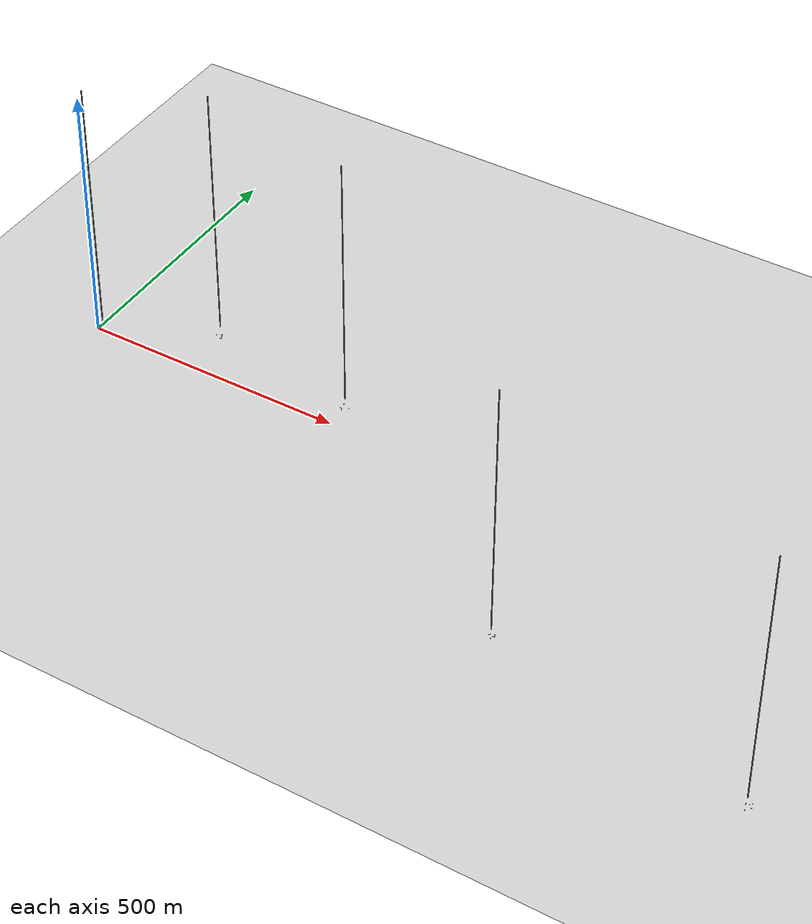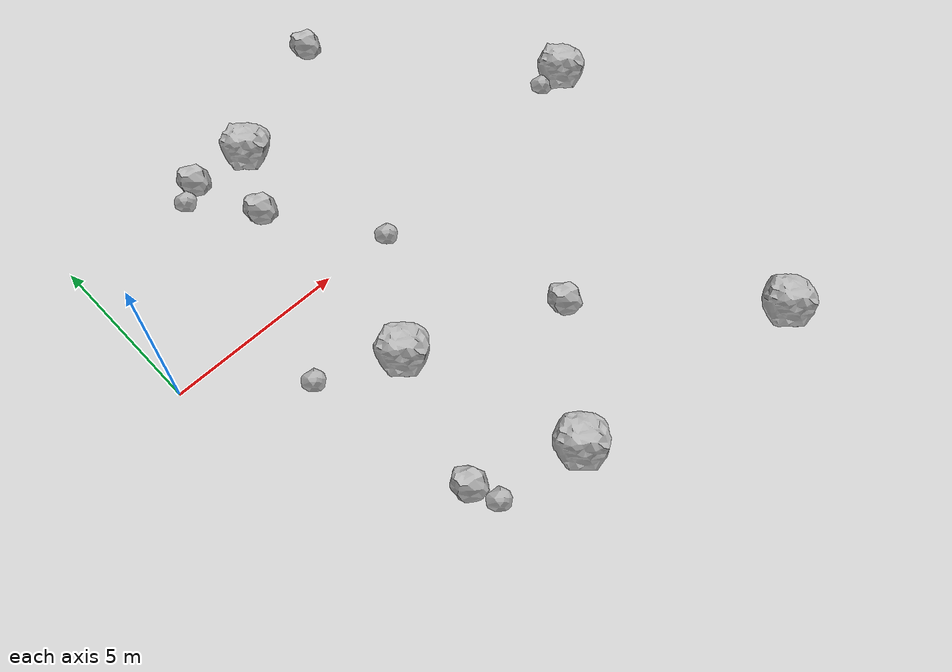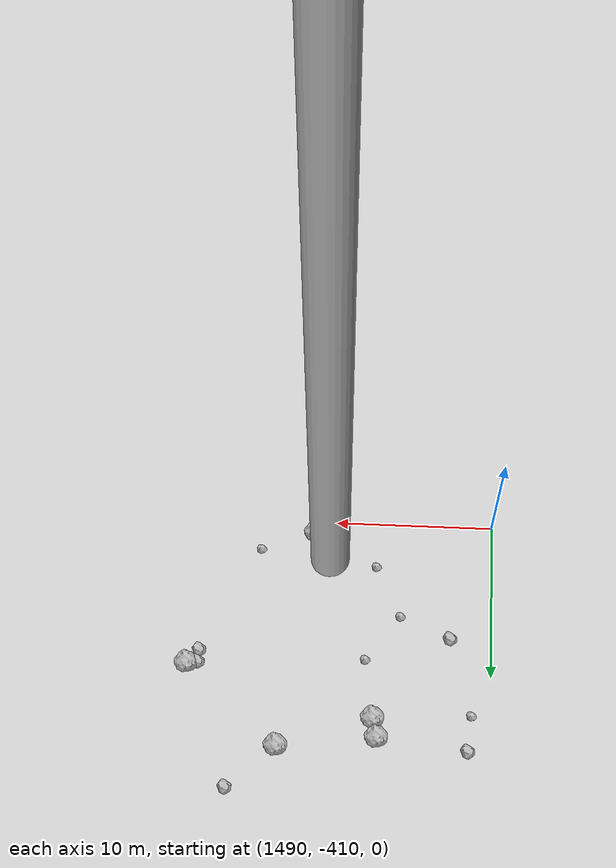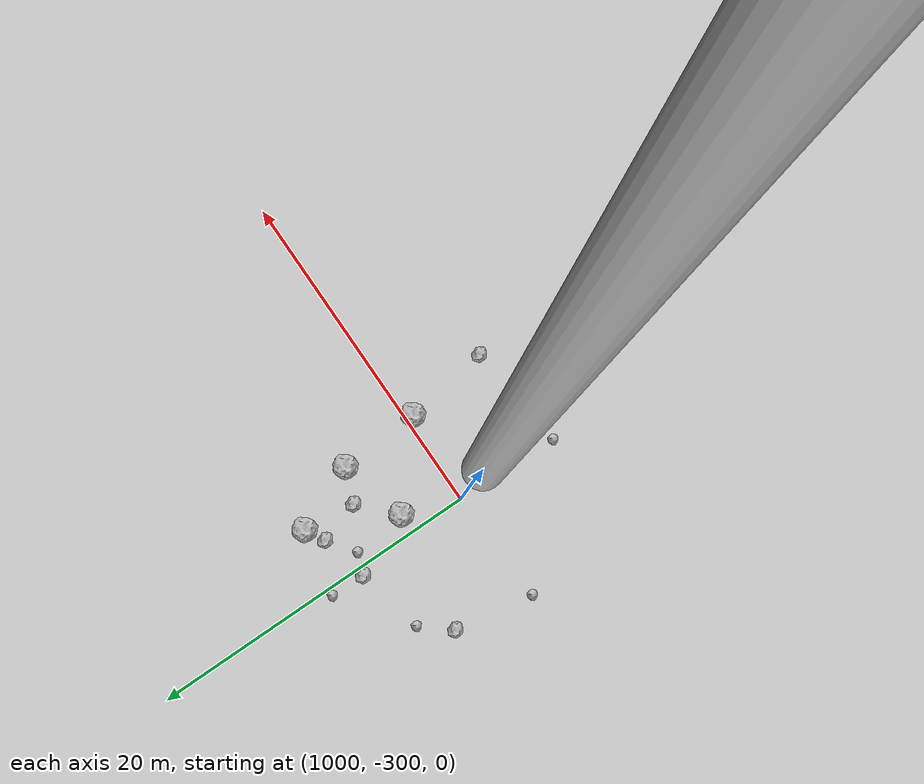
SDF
<?xml version="1.0" ?>
<sdf version="1.6">
  <world name="default">

    <include>
      <uri>model://custom_ground</uri>
    </include>

    <include>
      <uri>model://sun</uri>
    </include>

    <spherical_coordinates>
      <surface_model>EARTH_WGS84</surface_model>
      <latitude_deg>38.161479</latitude_deg>
      <longitude_deg>-122.454630</longitude_deg>
      <elevation>488.0</elevation>
      <heading_deg>90</heading_deg>
    </spherical_coordinates>

    <model name="rock1_0_0">
      <include>
        <uri>model://rock1</uri>
        <pose>15.049386007009108 0.6301330291185518 0.5 0 0 0</pose>
      </include>
    </model>
    <model name="rock1_0_1">
      <include>
        <uri>model://rock1</uri>
        <pose>6.252240621405232 -8.107494832419547 0.5 0 0 0</pose>
      </include>
    </model>
    <model name="rock1_0_2">
      <include>
        <uri>model://rock1</uri>
        <pose>6.13131145625172 4.898018880516021 0.5 0 0 0</pose>
      </include>
    </model>
    <model name="rock1_0_3">
      <include>
        <uri>model://rock1</uri>
        <pose>4.850833298447603 -3.2062866099931453 0.5 0 0 0</pose>
      </include>
    </model>
    <model name="rock1_0_4">
      <include>
        <uri>model://rock1</uri>
        <pose>13.146888730386816 -9.274559202458192 0.5 0 0 0</pose>
      </include>
    </model>
    <model name="rock2_0_0">
      <include>
        <uri>model://rock2</uri>
        <pose>5.053125258290841 3.0263943467481464 0.3 0 0 0</pose>
      </include>
    </model>
    <model name="rock2_0_1">
      <include>
        <uri>model://rock2</uri>
        <pose>10.058355284001163 7.05131651492384 0.3 0 0 0</pose>
      </include>
    </model>
    <model name="rock2_0_2">
      <include>
        <uri>model://rock2</uri>
        <pose>4.307949738254033 5.146027517969925 0.3 0 0 0</pose>
      </include>
    </model>
    <model name="rock2_0_3">
      <include>
        <uri>model://rock2</uri>
        <pose>9.01484330839224 -4.997014113383091 0.3 0 0 0</pose>
      </include>
    </model>
    <model name="rock2_0_4">
      <include>
        <uri>model://rock2</uri>
        <pose>3.544194802115388 -6.901821173078497 0.3 0 0 0</pose>
      </include>
    </model>
    <model name="rock3_0_0">
      <include>
        <uri>model://rock3</uri>
        <pose>3.692150799798075 4.700861158542702 0.2 0 0 0</pose>
      </include>
    </model>
    <model name="rock3_0_1">
      <include>
        <uri>model://rock3</uri>
        <pose>14.209269292268571 0.6861085558435409 0.2 0 0 0</pose>
      </include>
    </model>
    <model name="rock3_0_2">
      <include>
        <uri>model://rock3</uri>
        <pose>2.6527298456291715 -2.1764521321983343 0.2 0 0 0</pose>
      </include>
    </model>
    <model name="rock3_0_3">
      <include>
        <uri>model://rock3</uri>
        <pose>3.784452737846311 -7.686834529624152 0.2 0 0 0</pose>
      </include>
    </model>
    <model name="rock3_0_4">
      <include>
        <uri>model://rock3</uri>
        <pose>7.033622980079127 -0.1064135736379761 0.2 0 0 0</pose>
      </include>
    </model>
    <model name="rock1_1_0">
      <include>
        <uri>model://rock1</uri>
        <pose>192.42710236050746 96.53637959637186 0.5 0 0 0</pose>
      </include>
    </model>
    <model name="rock1_1_1">
      <include>
        <uri>model://rock1</uri>
        <pose>203.54833982389934 97.2449010823345 0.5 0 0 0</pose>
      </include>
    </model>
    <model name="rock1_1_2">
      <include>
        <uri>model://rock1</uri>
        <pose>204.71263157994605 96.43378466469366 0.5 0 0 0</pose>
      </include>
    </model>
    <model name="rock1_1_3">
      <include>
        <uri>model://rock1</uri>
        <pose>202.04696728433305 101.47773368306039 0.5 0 0 0</pose>
      </include>
    </model>
    <model name="rock1_1_4">
      <include>
        <uri>model://rock1</uri>
        <pose>204.69179203726998 92.35005801737452 0.5 0 0 0</pose>
      </include>
    </model>
    <model name="rock2_1_0">
      <include>
        <uri>model://rock2</uri>
        <pose>200.40550306482334 102.01350010046413 0.3 0 0 0</pose>
      </include>
    </model>
    <model name="rock2_1_1">
      <include>
        <uri>model://rock2</uri>
        <pose>200.8526123108401 93.20024362342579 0.3 0 0 0</pose>
      </include>
    </model>
    <model name="rock2_1_2">
      <include>
        <uri>model://rock2</uri>
        <pose>201.6118051652934 101.99995111687676 0.3 0 0 0</pose>
      </include>
    </model>
    <model name="rock2_1_3">
      <include>
        <uri>model://rock2</uri>
        <pose>193.27268170823587 102.19213923483092 0.3 0 0 0</pose>
      </include>
    </model>
    <model name="rock2_1_4">
      <include>
        <uri>model://rock2</uri>
        <pose>199.72059251782534 97.49659293152425 0.3 0 0 0</pose>
      </include>
    </model>
    <model name="rock3_1_0">
      <include>
        <uri>model://rock3</uri>
        <pose>206.56306871137915 93.32801635429581 0.2 0 0 0</pose>
      </include>
    </model>
    <model name="rock3_1_1">
      <include>
        <uri>model://rock3</uri>
        <pose>194.86262321302928 97.43796516228424 0.2 0 0 0</pose>
      </include>
    </model>
    <model name="rock3_1_2">
      <include>
        <uri>model://rock3</uri>
        <pose>205.7190195968323 106.40698941195407 0.2 0 0 0</pose>
      </include>
    </model>
    <model name="rock3_1_3">
      <include>
        <uri>model://rock3</uri>
        <pose>195.10233408642787 94.64071350535993 0.2 0 0 0</pose>
      </include>
    </model>
    <model name="rock3_1_4">
      <include>
        <uri>model://rock3</uri>
        <pose>205.65631066050452 106.30277897627472 0.2 0 0 0</pose>
      </include>
    </model>
    <model name="rock1_2_0">
      <include>
        <uri>model://rock1</uri>
        <pose>503.6720318537937 55.01953659794968 0.5 0 0 0</pose>
      </include>
    </model>
    <model name="rock1_2_1">
      <include>
        <uri>model://rock1</uri>
        <pose>498.5396587855694 40.473372570092344 0.5 0 0 0</pose>
      </include>
    </model>
    <model name="rock1_2_2">
      <include>
        <uri>model://rock1</uri>
        <pose>507.27554304829476 50.116640560171675 0.5 0 0 0</pose>
      </include>
    </model>
    <model name="rock1_2_3">
      <include>
        <uri>model://rock1</uri>
        <pose>496.22027932865427 44.7859948560026 0.5 0 0 0</pose>
      </include>
    </model>
    <model name="rock1_2_4">
      <include>
        <uri>model://rock1</uri>
        <pose>493.76452533693066 56.155950588335955 0.5 0 0 0</pose>
      </include>
    </model>
    <model name="rock2_2_0">
      <include>
        <uri>model://rock2</uri>
        <pose>492.09787578231754 45.7140328221999 0.3 0 0 0</pose>
      </include>
    </model>
    <model name="rock2_2_1">
      <include>
        <uri>model://rock2</uri>
        <pose>504.1340147752716 44.22807505034277 0.3 0 0 0</pose>
      </include>
    </model>
    <model name="rock2_2_2">
      <include>
        <uri>model://rock2</uri>
        <pose>501.81279810070123 48.70633072249143 0.3 0 0 0</pose>
      </include>
    </model>
    <model name="rock2_2_3">
      <include>
        <uri>model://rock2</uri>
        <pose>495.10521920390124 42.26674462840012 0.3 0 0 0</pose>
      </include>
    </model>
    <model name="rock2_2_4">
      <include>
        <uri>model://rock2</uri>
        <pose>493.036965327276 44.433779519045835 0.3 0 0 0</pose>
      </include>
    </model>
    <model name="rock3_2_0">
      <include>
        <uri>model://rock3</uri>
        <pose>502.6508852188849 56.74739100764969 0.2 0 0 0</pose>
      </include>
    </model>
    <model name="rock3_2_1">
      <include>
        <uri>model://rock3</uri>
        <pose>497.4490489197545 45.995993321947864 0.2 0 0 0</pose>
      </include>
    </model>
    <model name="rock3_2_2">
      <include>
        <uri>model://rock3</uri>
        <pose>494.68093233310765 56.542088299448096 0.2 0 0 0</pose>
      </include>
    </model>
    <model name="rock3_2_3">
      <include>
        <uri>model://rock3</uri>
        <pose>497.42488091132924 50.44840952131988 0.2 0 0 0</pose>
      </include>
    </model>
    <model name="rock3_2_4">
      <include>
        <uri>model://rock3</uri>
        <pose>493.1093435486569 53.54315463304091 0.2 0 0 0</pose>
      </include>
    </model>
    <model name="rock1_3_0">
      <include>
        <uri>model://rock1</uri>
        <pose>1003.5848823241028 -291.7174185941615 0.5 0 0 0</pose>
      </include>
    </model>
    <model name="rock1_3_1">
      <include>
        <uri>model://rock1</uri>
        <pose>1005.2306606006129 -295.6034440145409 0.5 0 0 0</pose>
      </include>
    </model>
    <model name="rock1_3_2">
      <include>
        <uri>model://rock1</uri>
        <pose>1001.2310236714035 -296.6855998220648 0.5 0 0 0</pose>
      </include>
    </model>
    <model name="rock1_3_3">
      <include>
        <uri>model://rock1</uri>
        <pose>1000.7617055769496 -301.9233292708578 0.5 0 0 0</pose>
      </include>
    </model>
    <model name="rock1_3_4">
      <include>
        <uri>model://rock1</uri>
        <pose>1005.5071132850331 -300.4170206810502 0.5 0 0 0</pose>
      </include>
    </model>
    <model name="rock2_3_0">
      <include>
        <uri>model://rock2</uri>
        <pose>1002.4268552824559 -292.3327783996069 0.3 0 0 0</pose>
      </include>
    </model>
    <model name="rock2_3_1">
      <include>
        <uri>model://rock2</uri>
        <pose>994.1637802837153 -295.52776935571944 0.3 0 0 0</pose>
      </include>
    </model>
    <model name="rock2_3_2">
      <include>
        <uri>model://rock2</uri>
        <pose>1006.2166164175001 -305.4859956932653 0.3 0 0 0</pose>
      </include>
    </model>
    <model name="rock2_3_3">
      <include>
        <uri>model://rock2</uri>
        <pose>1003.2241146017876 -294.78129168594137 0.3 0 0 0</pose>
      </include>
    </model>
    <model name="rock2_3_4">
      <include>
        <uri>model://rock2</uri>
        <pose>999.5830796023527 -292.9709308357027 0.3 0 0 0</pose>
      </include>
    </model>
    <model name="rock3_3_0">
      <include>
        <uri>model://rock3</uri>
        <pose>999.607565872168 -290.93950948942063 0.2 0 0 0</pose>
      </include>
    </model>
    <model name="rock3_3_1">
      <include>
        <uri>model://rock3</uri>
        <pose>1000.8170145851523 -293.48527252151246 0.2 0 0 0</pose>
      </include>
    </model>
    <model name="rock3_3_2">
      <include>
        <uri>model://rock3</uri>
        <pose>999.858252126861 -306.2218331006984 0.2 0 0 0</pose>
      </include>
    </model>
    <model name="rock3_3_3">
      <include>
        <uri>model://rock3</uri>
        <pose>993.3108243691867 -300.24102993224074 0.2 0 0 0</pose>
      </include>
    </model>
    <model name="rock3_3_4">
      <include>
        <uri>model://rock3</uri>
        <pose>995.5411475909567 -293.87418270359524 0.2 0 0 0</pose>
      </include>
    </model>
    <model name="rock1_4_0">
      <include>
        <uri>model://rock1</uri>
        <pose>1509.0555395280555 -400.1851176071407 0.5 0 0 0</pose>
      </include>
    </model>
    <model name="rock1_4_1">
      <include>
        <uri>model://rock1</uri>
        <pose>1497.0715410164312 -395.8614004481517 0.5 0 0 0</pose>
      </include>
    </model>
    <model name="rock1_4_2">
      <include>
        <uri>model://rock1</uri>
        <pose>1503.2328245002732 -395.11401960118894 0.5 0 0 0</pose>
      </include>
    </model>
    <model name="rock1_4_3">
      <include>
        <uri>model://rock1</uri>
        <pose>1497.3445082226053 -397.0757448211082 0.5 0 0 0</pose>
      </include>
    </model>
    <model name="rock1_4_4">
      <include>
        <uri>model://rock1</uri>
        <pose>1501.3400374528608 -409.19887677541305 0.5 0 0 0</pose>
      </include>
    </model>
    <model name="rock2_4_0">
      <include>
        <uri>model://rock2</uri>
        <pose>1506.188167108799 -392.4067911544152 0.3 0 0 0</pose>
      </include>
    </model>
    <model name="rock2_4_1">
      <include>
        <uri>model://rock2</uri>
        <pose>1491.426843465546 -395.16691273824915 0.3 0 0 0</pose>
      </include>
    </model>
    <model name="rock2_4_2">
      <include>
        <uri>model://rock2</uri>
        <pose>1508.3050098413235 -401.07448795411653 0.3 0 0 0</pose>
      </include>
    </model>
    <model name="rock2_4_3">
      <include>
        <uri>model://rock2</uri>
        <pose>1508.349269520076 -400.29432316284345 0.3 0 0 0</pose>
      </include>
    </model>
    <model name="rock2_4_4">
      <include>
        <uri>model://rock2</uri>
        <pose>1492.6142159564831 -402.37251489587305 0.3 0 0 0</pose>
      </include>
    </model>
    <model name="rock3_4_0">
      <include>
        <uri>model://rock3</uri>
        <pose>1495.7348528875054 -403.7735412874556 0.2 0 0 0</pose>
      </include>
    </model>
    <model name="rock3_4_1">
      <include>
        <uri>model://rock3</uri>
        <pose>1497.329686621024 -407.0620679257419 0.2 0 0 0</pose>
      </include>
    </model>
    <model name="rock3_4_2">
      <include>
        <uri>model://rock3</uri>
        <pose>1504.7222471039286 -408.01552130586003 0.2 0 0 0</pose>
      </include>
    </model>
    <model name="rock3_4_3">
      <include>
        <uri>model://rock3</uri>
        <pose>1497.8696065105532 -400.848636670003 0.2 0 0 0</pose>
      </include>
    </model>
    <model name="rock3_4_4">
      <include>
        <uri>model://rock3</uri>
        <pose>1491.196527725956 -397.46330162111076 0.2 0 0 0</pose>
      </include>
    </model>

    <model name="cylinder_1">
      <static>true</static>
      <link name="link">
        <visual name="visual">
          <geometry>
            <cylinder>
              <radius>1</radius>
              <length>500</length>
            </cylinder>
          </geometry>
        </visual>
      </link>
      <pose>10 0 270 0 0 0</pose>
    </model>

    <model name="cylinder_2">
      <static>true</static>
      <link name="link">
        <visual name="visual">
          <geometry>
            <cylinder>
              <radius>1</radius>
              <length>500</length>
            </cylinder>
          </geometry>
        </visual>
      </link>
      <pose>200 100 270 0 0 0</pose>
    </model>

    <model name="cylinder_3">
      <static>true</static>
      <link name="link">
        <visual name="visual">
          <geometry>
            <cylinder>
              <radius>1</radius>
              <length>500</length>
            </cylinder>
          </geometry>
        </visual>
      </link>
      <pose>500 50 270 0 0 0</pose>
    </model>

    <model name="cylinder_4">
      <static>true</static>
      <link name="link">
        <visual name="visual">
          <geometry>
            <cylinder>
              <radius>1</radius>
              <length>500</length>
            </cylinder>
          </geometry>
        </visual>
      </link>
      <pose>1000 -300 270 0 0 0</pose>
    </model>

    <model name="cylinder_5">
      <static>true</static>
      <link name="link">
        <visual name="visual">
          <geometry>
            <cylinder>
              <radius>1</radius>
              <length>500</length>
            </cylinder>
          </geometry>
        </visual>
      </link>
      <pose>1500 -400 270 0 0 0</pose>
    </model>

  </world>
</sdf>

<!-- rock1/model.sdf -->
<sdf version="1.6">
  <model name="rock1">
    <static>true</static> <!-- Set to true if the model should not move -->
    <pose>0 0 0 0 0 0</pose>

    <!--z offset is 0.5 for full scale-->

    <link name="link">
      <collision name="rock1_collision">
        <geometry>
          <mesh>
            <uri>model://meshes/rock1.dae</uri>
          </mesh>
        </geometry>
      </collision>
      <visual name="rock1_visual">
        <geometry>
          <mesh>
            <uri>model://meshes/rock1.dae</uri>
          </mesh>
        </geometry>
        <material>
          <script>
            <uri>model://materials/scripts/sand_pebbles.material</uri>
            <name>custom_ground/Image</name>
          </script>
        </material>
      </visual>
    </link>
  </model>
</sdf>

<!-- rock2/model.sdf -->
<sdf version="1.6">
  <model name="rock2">
    <static>true</static> <!-- Set to true if the model should not move -->
    <pose>0 0 0 0 0 0</pose>

    <!--z offset is 0.3 for full scale-->

    <link name="link">
      <collision name="rock2_collision">
        <geometry>
          <mesh>
            <uri>model://meshes/rock2.dae</uri>
          </mesh>
        </geometry>
      </collision>
      <visual name="rock2_visual">
        <geometry>
          <mesh>
            <uri>model://meshes/rock2.dae</uri>
          </mesh>
        </geometry>
        <material>
          <script>
            <uri>model://materials/scripts/sand_pebbles.material</uri>
            <name>custom_ground/Image</name>
          </script>
        </material>
      </visual>
    </link>
  </model>
</sdf>

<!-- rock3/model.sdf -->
<sdf version="1.6">
  <model name="rock3">
    <static>true</static> <!-- Set to true if the model should not move -->
    <pose>0 0 0 0 0 0</pose>

    <!--z offset is 0.2 for full scale-->

    <link name="link">
      <collision name="rock3_collision">
        <geometry>
          <mesh>
            <uri>model://meshes/rock3.dae</uri>
          </mesh>
        </geometry>
      </collision>
      <visual name="rock3_visual">
        <geometry>
          <mesh>
            <uri>model://meshes/rock3.dae</uri>
          </mesh>
        </geometry>
        <material>
          <script>
            <uri>model://materials/scripts/sand_pebbles.material</uri>
            <name>custom_ground/Image</name>
          </script>
        </material>
      </visual>
    </link>
  </model>
</sdf>

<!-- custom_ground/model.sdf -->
<sdf version="1.6">
  <model name="custom_ground">
    <static>true</static> <!-- Ground is static and immovable -->
    <link name="ground_link">
      <pose>240 0 0 0 0 0</pose> <!-- Position and orientation relative to the world -->
      <!-- Visual Representation -->
      <visual name="ground_visual">
        <geometry>
          <plane>
            <normal>0 0 1</normal> <!-- Upward facing plane -->
            <size>500 500</size> <!-- Size of the plane -->
          </plane>
        </geometry>
        <material>
          <script>
            <uri>model://materials/scripts/sand_pebbles.material</uri>
            <name>custom_ground/Image</name>
          </script>
        </material>
      </visual>

      <!-- Collision Representation -->
      <collision name="ground_collision">
        <geometry>
          <plane>
            <normal>0 0 1</normal>
            <size>100 100</size>
          </plane>
        </geometry>
      </collision>

    </link>
  </model>
</sdf>
